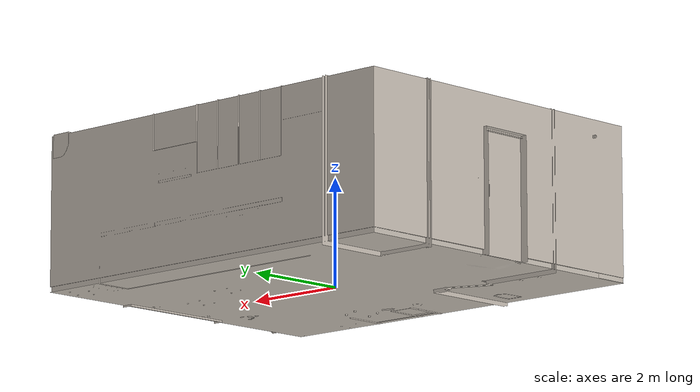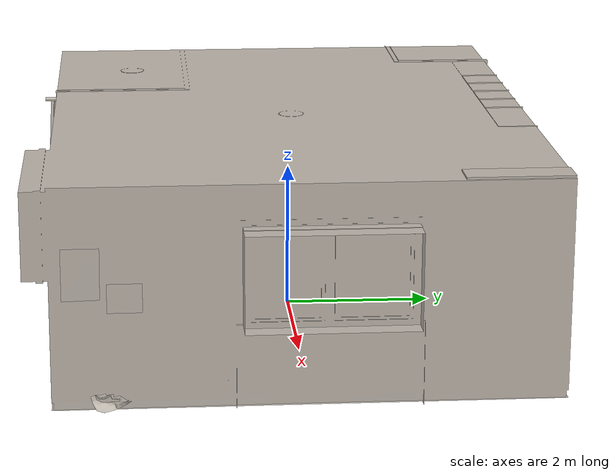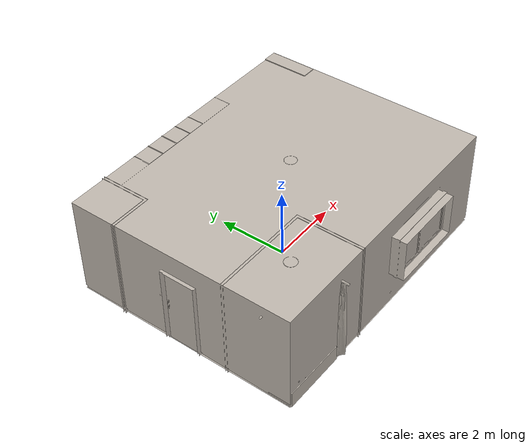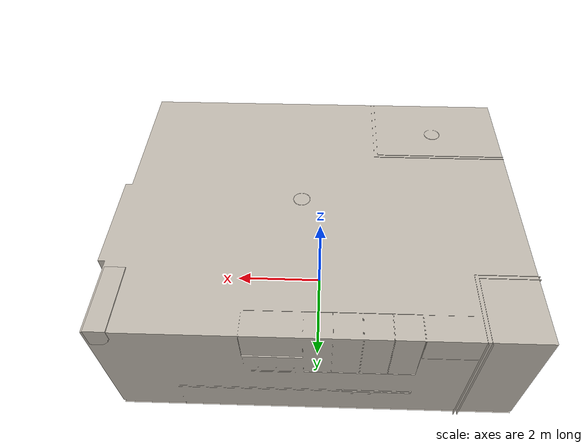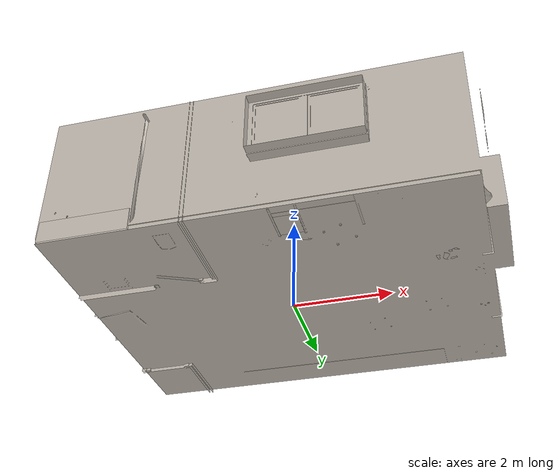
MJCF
<mujoco model="an_old_cheap_room_in_chinatown">
  <compiler angle="radian" eulerseq="xyz"/>
  <default>
    <default class="visual">
      <geom group="2" type="mesh" contype="0" conaffinity="0"/>
    </default>
    <default class="collision">
      <geom group="3" type="mesh"/>
    </default>
  </default>
  <asset>
    <texture type="2d" name="material_0" file="material_0.png"/>
    <material name="material_0" texture="material_0" specular="0.4000000000000001" shininess="0.001"/>
    <texture type="2d" name="material_1" file="material_1.png"/>
    <material name="material_1" texture="material_1" specular="0.4000000000000001" shininess="0.001"/>
    <texture type="2d" name="material_2" file="material_2.png"/>
    <material name="material_2" texture="material_2" specular="0.4000000000000001" shininess="0.001"/>
    <texture type="2d" name="material_3" file="material_3.png"/>
    <material name="material_3" texture="material_3" specular="0.4000000000000001" shininess="0.001"/>
    <texture type="2d" name="material_4" file="material_4.png"/>
    <material name="material_4" texture="material_4" specular="0.4000000000000001" shininess="0.001"/>
    <texture type="2d" name="material_5" file="material_5.png"/>
    <material name="material_5" texture="material_5" specular="0.4000000000000001" shininess="0.001"/>
    <mesh file="an_old_cheap_room_in_chinatown_0.obj"/>
    <mesh file="an_old_cheap_room_in_chinatown_1.obj"/>
    <mesh file="an_old_cheap_room_in_chinatown_2.obj"/>
    <mesh file="an_old_cheap_room_in_chinatown_3.obj"/>
    <mesh file="an_old_cheap_room_in_chinatown_4.obj"/>
    <mesh file="an_old_cheap_room_in_chinatown_5.obj"/>
    <mesh file="an_old_cheap_room_in_chinatown_collision_0.obj"/>
    <mesh file="an_old_cheap_room_in_chinatown_collision_1.obj"/>
    <mesh file="an_old_cheap_room_in_chinatown_collision_2.obj"/>
    <mesh file="an_old_cheap_room_in_chinatown_collision_3.obj"/>
    <mesh file="an_old_cheap_room_in_chinatown_collision_4.obj"/>
    <mesh file="an_old_cheap_room_in_chinatown_collision_5.obj"/>
    <mesh file="an_old_cheap_room_in_chinatown_collision_6.obj"/>
    <mesh file="an_old_cheap_room_in_chinatown_collision_7.obj"/>
    <mesh file="an_old_cheap_room_in_chinatown_collision_8.obj"/>
    <mesh file="an_old_cheap_room_in_chinatown_collision_9.obj"/>
    <mesh file="an_old_cheap_room_in_chinatown_collision_10.obj"/>
    <mesh file="an_old_cheap_room_in_chinatown_collision_11.obj"/>
    <mesh file="an_old_cheap_room_in_chinatown_collision_12.obj"/>
  </asset>
  <worldbody>
    <body name="an_old_cheap_room_in_chinatown" euler="1.57 0 0">
      <geom mesh="an_old_cheap_room_in_chinatown_0" material="material_5" class="visual"/>
      <geom mesh="an_old_cheap_room_in_chinatown_1" material="material_4" class="visual"/>
      <geom mesh="an_old_cheap_room_in_chinatown_2" material="material_3" class="visual"/>
      <geom mesh="an_old_cheap_room_in_chinatown_3" material="material_2" class="visual"/>
      <geom mesh="an_old_cheap_room_in_chinatown_4" material="material_1" class="visual"/>
      <geom mesh="an_old_cheap_room_in_chinatown_5" material="material_0" class="visual"/>
      <geom mesh="an_old_cheap_room_in_chinatown_collision_0" rgba="0.24842451241198005 0.41256290989286826 0.4498938104240743 1" class="collision"/>
      <geom mesh="an_old_cheap_room_in_chinatown_collision_1" rgba="0.6033740913298343 0.28730279979076634 0.43051081733152274 1" class="collision"/>
      <geom mesh="an_old_cheap_room_in_chinatown_collision_2" rgba="0.707382313853643 0.28965155797229547 0.32059618530302025 1" class="collision"/>
      <geom mesh="an_old_cheap_room_in_chinatown_collision_3" rgba="0.16711993451153495 0.0801378897084466 0.014627330912109215 1" class="collision"/>
      <geom mesh="an_old_cheap_room_in_chinatown_collision_4" rgba="0.3406844582032673 0.9357945249913642 0.38809557876136525 1" class="collision"/>
      <geom mesh="an_old_cheap_room_in_chinatown_collision_5" rgba="0.8949223142288069 0.7377641615149871 0.6385029934668318 1" class="collision"/>
      <geom mesh="an_old_cheap_room_in_chinatown_collision_6" rgba="0.12791716843799272 0.2208802701445074 0.45363759155789274 1" class="collision"/>
      <geom mesh="an_old_cheap_room_in_chinatown_collision_7" rgba="0.28807595876006276 0.7436069119826197 0.5232780681584285 1" class="collision"/>
      <geom mesh="an_old_cheap_room_in_chinatown_collision_8" rgba="0.7633260849467223 0.31230250112049596 0.9522119985095042 1" class="collision"/>
      <geom mesh="an_old_cheap_room_in_chinatown_collision_9" rgba="0.98538645106099 0.2733645472300845 0.5975343856786409 1" class="collision"/>
      <geom mesh="an_old_cheap_room_in_chinatown_collision_10" rgba="0.5814012380595662 0.9482326055182129 0.19715639191477496 1" class="collision"/>
      <geom mesh="an_old_cheap_room_in_chinatown_collision_11" rgba="0.5585674390360226 0.9170711231198513 0.3641171736257883 1" class="collision"/>
      <geom mesh="an_old_cheap_room_in_chinatown_collision_12" rgba="0.6026223899231574 0.6151145418914323 0.22541957991386208 1" class="collision"/>
    </body>
  </worldbody>
</mujoco>
